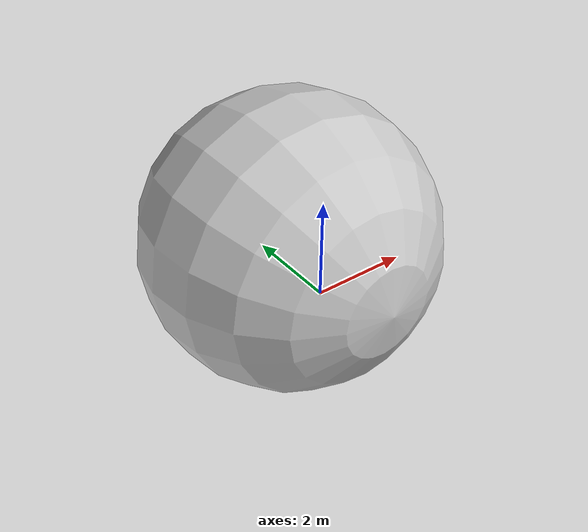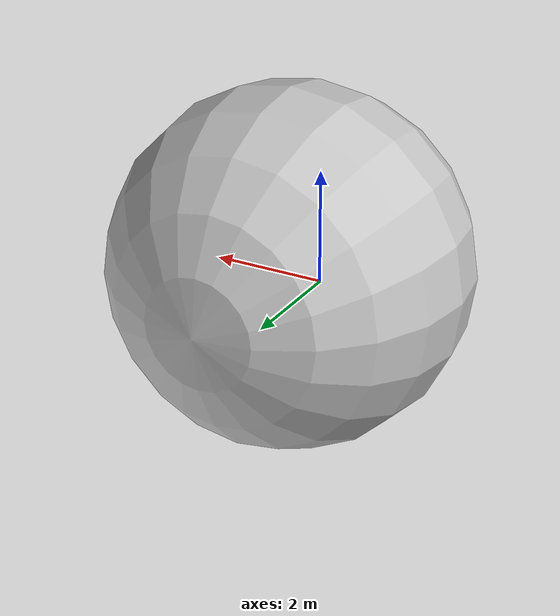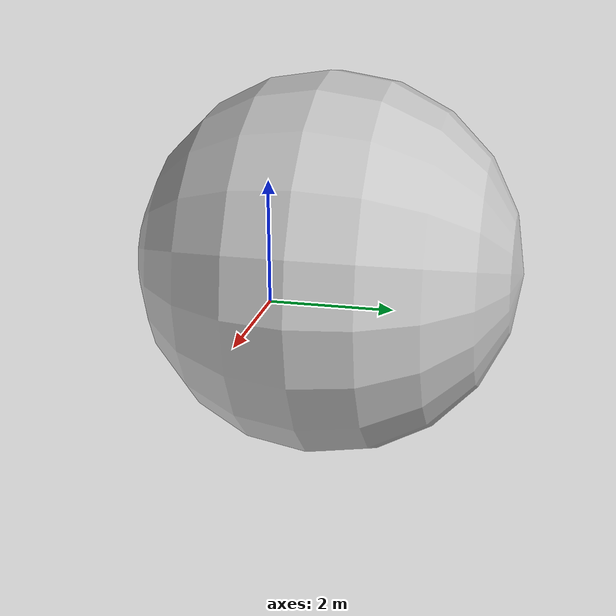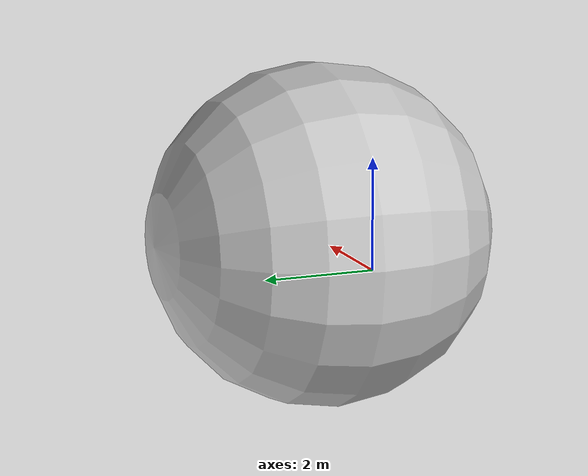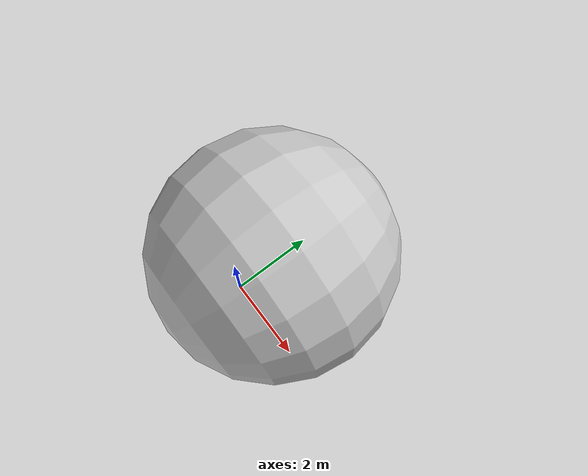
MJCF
<mujoco model="scene_a4_sharp_curve_1">
  <include file="ee_rig.xml" />

  <asset>
    <!-- A4(297x210mm) 용지 + 용접선 텍스처. textures/gen_seam_textures.py가 굽고, 같은 이름의
         .json(ground truth 경로)도 같이 만든다(envs/seam_ground_truth.py가 읽음). -->
    <texture type="2d" name="a4_weld_seam" file="textures/a4_weld_seam_sharp_curve_1.png" />
    <material name="a4_weld_seam" texture="a4_weld_seam" texuniform="false" specular="0.05" shininess="0.02" />
  </asset>

  <include file="scene_common.xml" />
</mujoco>

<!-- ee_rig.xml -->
<mujoco model="ee_rig">

  <default>
    <default class="ee">
      <geom contype="0" conaffinity="0" group="2"/>
    </default>
  </default>

  <worldbody>
    <body name="mocap_target" mocap="true" pos="0.25 0 0.15">
      <!-- 디버그용 반투명 표식 (목표 위치 확인용, 충돌 없음) -->
      <geom class="ee" type="sphere" size="0.004" rgba="1 1 0 0.35"/>
    </body>

    <body name="ee_body" pos="0.25 0 0.15">
      <freejoint name="ee_free"/>
      <inertial pos="0 0 0" mass="0.05" diaginertia="1e-5 1e-5 1e-5"/>
      <geom class="ee" type="box" size="0.012 0.012 0.008" rgba="0.2 0.2 0.2 1"/>
      <!-- 도구: 얇은 막대, 로컬 -z로 5cm 연장 (so101_new_calib_camera.xml의 검증된 방향/치수 재사용).
           바닥과만 충돌(전용 채널 bit1=2) — ee_body 자신의 표식 박스와는 안 부딪힘(그 박스는 group만
           다르고 contype/conaffinity 0이라 애초에 비충돌). -->
      <geom name="tool_rod" type="cylinder" size="0.0015 0.025" pos="0 0 -0.025"
          rgba="0.55 0.55 0.55 1" contype="2" conaffinity="2" friction="0.3 0.005 0.0001"/>
      <camera name="wrist" pos="-0.06 0 0.03" quat="0.670820 0.223607 -0.223607 -0.670820" fovy="50"/>
    </body>
  </worldbody>

  <equality>
    <!-- solref(time constant, damping ratio): 20ms/critically-damped로 시작 — 부드럽게 목표를
         쫓아가되 바닥 접촉 시 과도한 진동 없이 저항하도록. 불안정하면 첫 값(시간상수)을 늘릴 것. -->
    <weld name="ee_weld" body1="ee_body" body2="mocap_target" solref="0.02 1" solimp="0.9 0.95 0.001"/>
  </equality>
</mujoco>

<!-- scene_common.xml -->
<mujoco model="scene_common">
  <visual>
    <headlight diffuse="0.6 0.6 0.6" ambient="0.3 0.3 0.3" specular="0 0 0" />
    <rgba haze="0.15 0.25 0.35 1" />
    <global azimuth="160" elevation="-20" />
  </visual>

  <asset>
    <texture type="skybox" builtin="gradient" rgb1="0.3 0.5 0.7" rgb2="0 0 0" width="512" height="3072" />
    <material name="desk" rgba="0.55 0.38 0.22 1" specular="0.1" shininess="0.05" reflectance="0.02" />
    <material name="room_floor" rgba="0.22 0.22 0.22 1" specular="0.05" shininess="0.02" />
    <material name="wall" rgba="0.78 0.78 0.78 1" specular="0.02" shininess="0.01" />
  </asset>

  <worldbody>
    <light pos="0 0 3.5" dir="0 0 -1" directional="true" />

    <!-- 전체(오버뷰) 카메라 — ee_body에 안 붙은 고정 카메라, 책상 전체를 비스듬히 내려다본다.
         실물로 치면 "작업대를 바라보는 고정 삼각대 카메라" 역할(GUI 쪽 TRAINING 녹화 화면에서
         손목 카메라와 나란히 띄움). 각도는 근사값 — 실제로 띄워보고 조정 필요. -->
    <camera name="overview" pos="0.25 -0.55 0.5" euler="48 0 0" fovy="55"/>

    <geom name="floor" size="0.6 0.4 0.05" pos="0 0 0" type="plane" material="desk" contype="1" conaffinity="3" />

    <!-- 방 바닥(배경용, 충돌 없음) — 책상 아래로 책상 높이만큼(근사 0.75m) 내려서 배치. -->
    <geom name="room_floor" size="3 3 0.05" pos="0 0 -0.75" type="plane" material="room_floor"
        contype="0" conaffinity="0" />

    <!-- 뒷벽(배경용, 충돌 없음) — 책상 뒤(+y)에 수직으로. -->
    <geom name="wall_back" size="3 1.5 0.05" pos="0 1.0 0.75" euler="90 0 0" material="wall"
        contype="0" conaffinity="0" />

    <!-- A4 용지: 긴 축(297mm)을 world x(로봇 전방)에 맞춰 배치. 경로 영역(x 0.15~0.35)이 용지
         안쪽(x 0.10~0.40)에 들어오도록 중심을 x=0.25에 둠. 재질(a4_weld_seam)은 각 scene_a4*.xml이
         자기 텍스처로 정의해서 넘겨준다. -->
    <geom name="a4_paper" type="plane" size="0.1485 0.105 0.001" pos="0.25 0 0.001"
        material="a4_weld_seam" contype="0" conaffinity="0" />
  </worldbody>
</mujoco>
